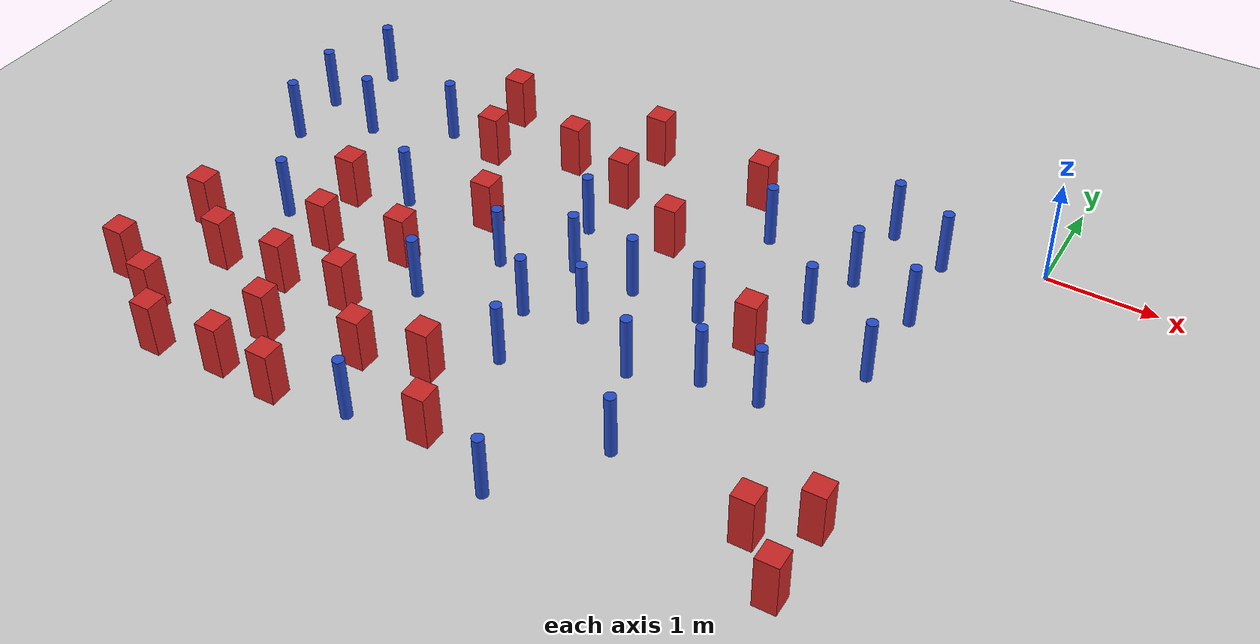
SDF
<sdf version="1.6">
 <world name="default">
  <model name="ground_plane">
   <static>1</static>
   <link name="link">
    <collision name="collision">
     <geometry><plane><normal>0 0 1</normal><size>100 100</size></plane></geometry>
     <surface><friction><ode><mu>100</mu><mu2>50</mu2></ode></friction></surface>
    </collision>
    <visual name="visual">
     <cast_shadows>0</cast_shadows>
     <geometry><plane><normal>0 0 1</normal><size>100 100</size></plane></geometry>
     <material>
      <ambient>1.0 1.0 1.0 1.0</ambient>
      <diffuse>0.8 0.8 0.8 1.0</diffuse>
      <specular>0.01 0.01 0.01 1.000000</specular>
     </material>
    </visual>
   </link>
  </model>
  <model name="square_post_obstacle1">
   <static>true</static>
   <pose>-6.39491690742 -4.133903235 1.91545236811e-07 -7.35059704564e-06 1.12565212e-07 2.39332434364e-05</pose>
   <link name="link">
    <pose>0 0 0.25 0 -0 0</pose>
    <inertial>
     <mass>100</mass>
     <inertia>
      <ixx>0.166667</ixx>
      <ixy>0</ixy>
      <ixz>0</ixz>
      <iyy>0.166667</iyy>
      <iyz>0</iyz>
      <izz>0.166667</izz>
     </inertia>
    </inertial>
    <collision name="collision"><geometry><box><size>.2 .2 .5</size></box></geometry></collision>
    <visual name="visual">
     <geometry><box><size>.2 .2 .5</size></box></geometry>
     <material>
      <script><name>Gazebo/Red</name><uri>file://media/materials/scripts/gazebo.material</uri></script>
     </material>
    </visual>
   </link>
  </model>
  <model name="pole_obstacle0">
   <static>true</static>
   <pose>-4.56092497138 -2.88060455729 7.38925637345e-09 -8.47170692798e-08 1.24976764937e-08 -1.74513093023e-07</pose>
   <link name="link">
    <pose>0 0 0.3 0 -0 0</pose>
    <inertial>
     <mass>1</mass>
     <inertia><ixx>0.145833</ixx><ixy>0</ixy><ixz>0</ixz><iyy>0.145833</iyy><iyz>0</iyz><izz>0.125</izz></inertia>
    </inertial>
    <collision name="collision">
     <geometry><cylinder><radius>0.05</radius><length>.6</length></cylinder></geometry>
    </collision>
    <visual name="visual">
     <geometry><cylinder><radius>0.05</radius><length>.6</length></cylinder></geometry>
     <material>
      <script><name>Gazebo/Blue</name><uri>file://media/materials/scripts/gazebo.material</uri></script>
     </material>
    </visual>
   </link>
  </model>
  <model name="square_post_obstacle5">
   <static>true</static>
   <pose>-3.91053096083 -3.63383336652 1.91545236811e-07 -7.35059704564e-06 1.12565212e-07 2.39332434364e-05</pose>
   <link name="link">
    <pose>0 0 0.25 0 -0 0</pose>
    <inertial>
     <mass>100</mass>
     <inertia>
      <ixx>0.166667</ixx>
      <ixy>0</ixy>
      <ixz>0</ixz>
      <iyy>0.166667</iyy>
      <iyz>0</iyz>
      <izz>0.166667</izz>
     </inertia>
    </inertial>
    <collision name="collision"><geometry><box><size>.2 .2 .5</size></box></geometry></collision>
    <visual name="visual">
     <geometry><box><size>.2 .2 .5</size></box></geometry>
     <material>
      <script><name>Gazebo/Red</name><uri>file://media/materials/scripts/gazebo.material</uri></script>
     </material>
    </visual>
   </link>
  </model>
  <model name="square_post_obstacle6">
   <static>true</static>
   <pose>-3.00124397409 -1.26506533317 1.91545236811e-07 -7.35059704564e-06 1.12565212e-07 2.39332434364e-05</pose>
   <link name="link">
    <pose>0 0 0.25 0 -0 0</pose>
    <inertial>
     <mass>100</mass>
     <inertia>
      <ixx>0.166667</ixx>
      <ixy>0</ixy>
      <ixz>0</ixz>
      <iyy>0.166667</iyy>
      <iyz>0</iyz>
      <izz>0.166667</izz>
     </inertia>
    </inertial>
    <collision name="collision"><geometry><box><size>.2 .2 .5</size></box></geometry></collision>
    <visual name="visual">
     <geometry><box><size>.2 .2 .5</size></box></geometry>
     <material>
      <script><name>Gazebo/Red</name><uri>file://media/materials/scripts/gazebo.material</uri></script>
     </material>
    </visual>
   </link>
  </model>
  <model name="pole_obstacle8">
   <static>true</static>
   <pose>-4.17518788709 -2.18737991646 7.38925637345e-09 -8.47170692798e-08 1.24976764937e-08 -1.74513093023e-07</pose>
   <link name="link">
    <pose>0 0 0.3 0 -0 0</pose>
    <inertial>
     <mass>1</mass>
     <inertia><ixx>0.145833</ixx><ixy>0</ixy><ixz>0</ixz><iyy>0.145833</iyy><iyz>0</iyz><izz>0.125</izz></inertia>
    </inertial>
    <collision name="collision">
     <geometry><cylinder><radius>0.05</radius><length>.6</length></cylinder></geometry>
    </collision>
    <visual name="visual">
     <geometry><cylinder><radius>0.05</radius><length>.6</length></cylinder></geometry>
     <material>
      <script><name>Gazebo/Blue</name><uri>file://media/materials/scripts/gazebo.material</uri></script>
     </material>
    </visual>
   </link>
  </model>
  <model name="pole_obstacle15">
   <static>true</static>
   <pose>-6.21907409106 -2.55616111198 7.38925637345e-09 -8.47170692798e-08 1.24976764937e-08 -1.74513093023e-07</pose>
   <link name="link">
    <pose>0 0 0.3 0 -0 0</pose>
    <inertial>
     <mass>1</mass>
     <inertia><ixx>0.145833</ixx><ixy>0</ixy><ixz>0</ixz><iyy>0.145833</iyy><iyz>0</iyz><izz>0.125</izz></inertia>
    </inertial>
    <collision name="collision">
     <geometry><cylinder><radius>0.05</radius><length>.6</length></cylinder></geometry>
    </collision>
    <visual name="visual">
     <geometry><cylinder><radius>0.05</radius><length>.6</length></cylinder></geometry>
     <material>
      <script><name>Gazebo/Blue</name><uri>file://media/materials/scripts/gazebo.material</uri></script>
     </material>
    </visual>
   </link>
  </model>
  <model name="pole_obstacle23">
   <static>true</static>
   <pose>-6.74121917437 -0.307114602016 7.38925637345e-09 -8.47170692798e-08 1.24976765003e-08 -1.7451309302e-07</pose>
   <link name="link">
    <pose>0 0 0.3 0 -0 0</pose>
    <inertial>
     <mass>1</mass>
     <inertia><ixx>0.145833</ixx><ixy>0</ixy><ixz>0</ixz><iyy>0.145833</iyy><iyz>0</iyz><izz>0.125</izz></inertia>
    </inertial>
    <collision name="collision">
     <geometry><cylinder><radius>0.05</radius><length>.6</length></cylinder></geometry>
    </collision>
    <visual name="visual">
     <geometry><cylinder><radius>0.05</radius><length>.6</length></cylinder></geometry>
     <material>
      <script><name>Gazebo/Blue</name><uri>file://media/materials/scripts/gazebo.material</uri></script>
     </material>
    </visual>
   </link>
  </model>
  <model name="pole_obstacle26">
   <static>true</static>
   <pose>-6.3582931307 -1.13641915893 7.38925637345e-09 -8.471706928e-08 1.24976765134e-08 -1.74513093015e-07</pose>
   <link name="link">
    <pose>0 0 0.3 0 -0 0</pose>
    <inertial>
     <mass>1</mass>
     <inertia><ixx>0.145833</ixx><ixy>0</ixy><ixz>0</ixz><iyy>0.145833</iyy><iyz>0</iyz><izz>0.125</izz></inertia>
    </inertial>
    <collision name="collision">
     <geometry><cylinder><radius>0.05</radius><length>.6</length></cylinder></geometry>
    </collision>
    <visual name="visual">
     <geometry><cylinder><radius>0.05</radius><length>.6</length></cylinder></geometry>
     <material>
      <script><name>Gazebo/Blue</name><uri>file://media/materials/scripts/gazebo.material</uri></script>
     </material>
    </visual>
   </link>
  </model>
  <model name="pole_obstacle27">
   <static>true</static>
   <pose>-1.35448538299 -0.120145712874 7.38925637345e-09 -8.471706928e-08 1.24976765072e-08 -1.74513093017e-07</pose>
   <link name="link">
    <pose>0 0 0.3 0 -0 0</pose>
    <inertial>
     <mass>1</mass>
     <inertia><ixx>0.145833</ixx><ixy>0</ixy><ixz>0</ixz><iyy>0.145833</iyy><iyz>0</iyz><izz>0.125</izz></inertia>
    </inertial>
    <collision name="collision">
     <geometry><cylinder><radius>0.05</radius><length>.6</length></cylinder></geometry>
    </collision>
    <visual name="visual">
     <geometry><cylinder><radius>0.05</radius><length>.6</length></cylinder></geometry>
     <material>
      <script><name>Gazebo/Blue</name><uri>file://media/materials/scripts/gazebo.material</uri></script>
     </material>
    </visual>
   </link>
  </model>
  <model name="pole_obstacle35">
   <static>true</static>
   <pose>-3.74560954083 -1.41328076876 7.38925637345e-09 -8.47170692796e-08 1.24976764713e-08 -1.74513093037e-07</pose>
   <link name="link">
    <pose>0 0 0.3 0 -0 0</pose>
    <inertial>
     <mass>1</mass>
     <inertia><ixx>0.145833</ixx><ixy>0</ixy><ixz>0</ixz><iyy>0.145833</iyy><iyz>0</iyz><izz>0.125</izz></inertia>
    </inertial>
    <collision name="collision">
     <geometry><cylinder><radius>0.05</radius><length>.6</length></cylinder></geometry>
    </collision>
    <visual name="visual">
     <geometry><cylinder><radius>0.05</radius><length>.6</length></cylinder></geometry>
     <material>
      <script><name>Gazebo/Blue</name><uri>file://media/materials/scripts/gazebo.material</uri></script>
     </material>
    </visual>
   </link>
  </model>
  <model name="pole_obstacle37">
   <static>true</static>
   <pose>-0.826497868445 -0.321082430772 7.38925637345e-09 -8.471706928e-08 1.24976765108e-08 -1.74513093015e-07</pose>
   <link name="link">
    <pose>0 0 0.3 0 -0 0</pose>
    <inertial>
     <mass>1</mass>
     <inertia><ixx>0.145833</ixx><ixy>0</ixy><ixz>0</ixz><iyy>0.145833</iyy><iyz>0</iyz><izz>0.125</izz></inertia>
    </inertial>
    <collision name="collision">
     <geometry><cylinder><radius>0.05</radius><length>.6</length></cylinder></geometry>
    </collision>
    <visual name="visual">
     <geometry><cylinder><radius>0.05</radius><length>.6</length></cylinder></geometry>
     <material>
      <script><name>Gazebo/Blue</name><uri>file://media/materials/scripts/gazebo.material</uri></script>
     </material>
    </visual>
   </link>
  </model>
  <model name="square_post_obstacle39">
   <static>true</static>
   <pose>-5.3908902493 -4.42289762209 1.91545236811e-07 -7.35059704564e-06 1.12565212e-07 2.39332434364e-05</pose>
   <link name="link">
    <pose>0 0 0.25 0 -0 0</pose>
    <inertial>
     <mass>100</mass>
     <inertia>
      <ixx>0.166667</ixx>
      <ixy>0</ixy>
      <ixz>0</ixz>
      <iyy>0.166667</iyy>
      <iyz>0</iyz>
      <izz>0.166667</izz>
     </inertia>
    </inertial>
    <collision name="collision"><geometry><box><size>.2 .2 .5</size></box></geometry></collision>
    <visual name="visual">
     <geometry><box><size>.2 .2 .5</size></box></geometry>
     <material>
      <script><name>Gazebo/Red</name><uri>file://media/materials/scripts/gazebo.material</uri></script>
     </material>
    </visual>
   </link>
  </model>
  <model name="pole_obstacle45">
   <static>true</static>
   <pose>-2.28425135521 -0.732208568051 7.38925637345e-09 -8.471706928e-08 1.24976765177e-08 -1.74513093012e-07</pose>
   <link name="link">
    <pose>0 0 0.3 0 -0 0</pose>
    <inertial>
     <mass>1</mass>
     <inertia><ixx>0.145833</ixx><ixy>0</ixy><ixz>0</ixz><iyy>0.145833</iyy><iyz>0</iyz><izz>0.125</izz></inertia>
    </inertial>
    <collision name="collision">
     <geometry><cylinder><radius>0.05</radius><length>.6</length></cylinder></geometry>
    </collision>
    <visual name="visual">
     <geometry><cylinder><radius>0.05</radius><length>.6</length></cylinder></geometry>
     <material>
      <script><name>Gazebo/Blue</name><uri>file://media/materials/scripts/gazebo.material</uri></script>
     </material>
    </visual>
   </link>
  </model>
  <model name="square_post_obstacle46">
   <static>true</static>
   <pose>-1.8198222395 -2.03254273891 1.91545236811e-07 -7.35059704564e-06 1.12565212e-07 2.39332434364e-05</pose>
   <link name="link">
    <pose>0 0 0.25 0 -0 0</pose>
    <inertial>
     <mass>100</mass>
     <inertia>
      <ixx>0.166667</ixx>
      <ixy>0</ixy>
      <ixz>0</ixz>
      <iyy>0.166667</iyy>
      <iyz>0</iyz>
      <izz>0.166667</izz>
     </inertia>
    </inertial>
    <collision name="collision"><geometry><box><size>.2 .2 .5</size></box></geometry></collision>
    <visual name="visual">
     <geometry><box><size>.2 .2 .5</size></box></geometry>
     <material>
      <script><name>Gazebo/Red</name><uri>file://media/materials/scripts/gazebo.material</uri></script>
     </material>
    </visual>
   </link>
  </model>
  <model name="square_post_obstacle52">
   <static>true</static>
   <pose>-6.02390070601 -4.48360898478 1.91545236811e-07 -7.35059704564e-06 1.12565212e-07 2.39332434364e-05</pose>
   <link name="link">
    <pose>0 0 0.25 0 -0 0</pose>
    <inertial>
     <mass>100</mass>
     <inertia>
      <ixx>0.166667</ixx>
      <ixy>0</ixy>
      <ixz>0</ixz>
      <iyy>0.166667</iyy>
      <iyz>0</iyz>
      <izz>0.166667</izz>
     </inertia>
    </inertial>
    <collision name="collision"><geometry><box><size>.2 .2 .5</size></box></geometry></collision>
    <visual name="visual">
     <geometry><box><size>.2 .2 .5</size></box></geometry>
     <material>
      <script><name>Gazebo/Red</name><uri>file://media/materials/scripts/gazebo.material</uri></script>
     </material>
    </visual>
   </link>
  </model>
  <model name="pole_obstacle51">
   <static>true</static>
   <pose>-1.40162476744 -0.888901979604 7.38925637345e-09 -8.47170692799e-08 1.24976765075e-08 -1.74513093017e-07</pose>
   <link name="link">
    <pose>0 0 0.3 0 -0 0</pose>
    <inertial>
     <mass>1</mass>
     <inertia><ixx>0.145833</ixx><ixy>0</ixy><ixz>0</ixz><iyy>0.145833</iyy><iyz>0</iyz><izz>0.125</izz></inertia>
    </inertial>
    <collision name="collision">
     <geometry><cylinder><radius>0.05</radius><length>.6</length></cylinder></geometry>
    </collision>
    <visual name="visual">
     <geometry><cylinder><radius>0.05</radius><length>.6</length></cylinder></geometry>
     <material>
      <script><name>Gazebo/Blue</name><uri>file://media/materials/scripts/gazebo.material</uri></script>
     </material>
    </visual>
   </link>
  </model>
  <model name="pole_obstacle52">
   <static>true</static>
   <pose>-5.63539537617 -0.811100000866 7.38925637345e-09 -8.47170692799e-08 1.24976765038e-08 -1.74513093018e-07</pose>
   <link name="link">
    <pose>0 0 0.3 0 -0 0</pose>
    <inertial>
     <mass>1</mass>
     <inertia><ixx>0.145833</ixx><ixy>0</ixy><ixz>0</ixz><iyy>0.145833</iyy><iyz>0</iyz><izz>0.125</izz></inertia>
    </inertial>
    <collision name="collision">
     <geometry><cylinder><radius>0.05</radius><length>.6</length></cylinder></geometry>
    </collision>
    <visual name="visual">
     <geometry><cylinder><radius>0.05</radius><length>.6</length></cylinder></geometry>
     <material>
      <script><name>Gazebo/Blue</name><uri>file://media/materials/scripts/gazebo.material</uri></script>
     </material>
    </visual>
   </link>
  </model>
  <model name="square_post_obstacle59">
   <static>true</static>
   <pose>-4.47175387688 -3.79075135599 1.91545236811e-07 -7.35059704564e-06 1.12565212e-07 2.39332434364e-05</pose>
   <link name="link">
    <pose>0 0 0.25 0 -0 0</pose>
    <inertial>
     <mass>100</mass>
     <inertia>
      <ixx>0.166667</ixx>
      <ixy>0</ixy>
      <ixz>0</ixz>
      <iyy>0.166667</iyy>
      <iyz>0</iyz>
      <izz>0.166667</izz>
     </inertia>
    </inertial>
    <collision name="collision"><geometry><box><size>.2 .2 .5</size></box></geometry></collision>
    <visual name="visual">
     <geometry><box><size>.2 .2 .5</size></box></geometry>
     <material>
      <script><name>Gazebo/Red</name><uri>file://media/materials/scripts/gazebo.material</uri></script>
     </material>
    </visual>
   </link>
  </model>
  <model name="square_post_obstacle62">
   <static>true</static>
   <pose>-2.60596281083 -0.266242657107 1.91545236811e-07 -7.35059704564e-06 1.12565212e-07 2.39332434364e-05</pose>
   <link name="link">
    <pose>0 0 0.25 0 -0 0</pose>
    <inertial>
     <mass>100</mass>
     <inertia>
      <ixx>0.166667</ixx>
      <ixy>0</ixy>
      <ixz>0</ixz>
      <iyy>0.166667</iyy>
      <iyz>0</iyz>
      <izz>0.166667</izz>
     </inertia>
    </inertial>
    <collision name="collision"><geometry><box><size>.2 .2 .5</size></box></geometry></collision>
    <visual name="visual">
     <geometry><box><size>.2 .2 .5</size></box></geometry>
     <material>
      <script><name>Gazebo/Red</name><uri>file://media/materials/scripts/gazebo.material</uri></script>
     </material>
    </visual>
   </link>
  </model>
  <model name="pole_obstacle73">
   <static>true</static>
   <pose>-0.822326774501 -1.91397265986 7.38925637345e-09 -8.47170692799e-08 1.24976765033e-08 -1.7451309302e-07</pose>
   <link name="link">
    <pose>0 0 0.3 0 -0 0</pose>
    <inertial>
     <mass>1</mass>
     <inertia><ixx>0.145833</ixx><ixy>0</ixy><ixz>0</ixz><iyy>0.145833</iyy><iyz>0</iyz><izz>0.125</izz></inertia>
    </inertial>
    <collision name="collision">
     <geometry><cylinder><radius>0.05</radius><length>.6</length></cylinder></geometry>
    </collision>
    <visual name="visual">
     <geometry><cylinder><radius>0.05</radius><length>.6</length></cylinder></geometry>
     <material>
      <script><name>Gazebo/Blue</name><uri>file://media/materials/scripts/gazebo.material</uri></script>
     </material>
    </visual>
   </link>
  </model>
  <model name="pole_obstacle74">
   <static>true</static>
   <pose>-1.43598949563 -2.61268876939 7.38925637345e-09 -8.47170692799e-08 1.24976765053e-08 -1.74513093017e-07</pose>
   <link name="link">
    <pose>0 0 0.3 0 -0 0</pose>
    <inertial>
     <mass>1</mass>
     <inertia><ixx>0.145833</ixx><ixy>0</ixy><ixz>0</ixz><iyy>0.145833</iyy><iyz>0</iyz><izz>0.125</izz></inertia>
    </inertial>
    <collision name="collision">
     <geometry><cylinder><radius>0.05</radius><length>.6</length></cylinder></geometry>
    </collision>
    <visual name="visual">
     <geometry><cylinder><radius>0.05</radius><length>.6</length></cylinder></geometry>
     <material>
      <script><name>Gazebo/Blue</name><uri>file://media/materials/scripts/gazebo.material</uri></script>
     </material>
    </visual>
   </link>
  </model>
  <model name="pole_obstacle80">
   <static>true</static>
   <pose>-6.91685607678 -1.54299257739 7.38925637345e-09 -8.471706928e-08 1.24976765134e-08 -1.74513093015e-07</pose>
   <link name="link">
    <pose>0 0 0.3 0 -0 0</pose>
    <inertial>
     <mass>1</mass>
     <inertia><ixx>0.145833</ixx><ixy>0</ixy><ixz>0</ixz><iyy>0.145833</iyy><iyz>0</iyz><izz>0.125</izz></inertia>
    </inertial>
    <collision name="collision">
     <geometry><cylinder><radius>0.05</radius><length>.6</length></cylinder></geometry>
    </collision>
    <visual name="visual">
     <geometry><cylinder><radius>0.05</radius><length>.6</length></cylinder></geometry>
     <material>
      <script><name>Gazebo/Blue</name><uri>file://media/materials/scripts/gazebo.material</uri></script>
     </material>
    </visual>
   </link>
  </model>
  <model name="pole_obstacle89">
   <static>true</static>
   <pose>-3.16234623937 -2.4626523414 7.38925637345e-09 -8.471706928e-08 1.24976765098e-08 -1.74513093016e-07</pose>
   <link name="link">
    <pose>0 0 0.3 0 -0 0</pose>
    <inertial>
     <mass>1</mass>
     <inertia><ixx>0.145833</ixx><ixy>0</ixy><ixz>0</ixz><iyy>0.145833</iyy><iyz>0</iyz><izz>0.125</izz></inertia>
    </inertial>
    <collision name="collision">
     <geometry><cylinder><radius>0.05</radius><length>.6</length></cylinder></geometry>
    </collision>
    <visual name="visual">
     <geometry><cylinder><radius>0.05</radius><length>.6</length></cylinder></geometry>
     <material>
      <script><name>Gazebo/Blue</name><uri>file://media/materials/scripts/gazebo.material</uri></script>
     </material>
    </visual>
   </link>
  </model>
  <model name="pole_obstacle92">
   <static>true</static>
   <pose>-6.95870342498 -0.946114692141 7.38925637345e-09 -8.47170692799e-08 1.24976765038e-08 -1.74513093018e-07</pose>
   <link name="link">
    <pose>0 0 0.3 0 -0 0</pose>
    <inertial>
     <mass>1</mass>
     <inertia><ixx>0.145833</ixx><ixy>0</ixy><ixz>0</ixz><iyy>0.145833</iyy><iyz>0</iyz><izz>0.125</izz></inertia>
    </inertial>
    <collision name="collision">
     <geometry><cylinder><radius>0.05</radius><length>.6</length></cylinder></geometry>
    </collision>
    <visual name="visual">
     <geometry><cylinder><radius>0.05</radius><length>.6</length></cylinder></geometry>
     <material>
      <script><name>Gazebo/Blue</name><uri>file://media/materials/scripts/gazebo.material</uri></script>
     </material>
    </visual>
   </link>
  </model>
  <model name="pole_obstacle94">
   <static>true</static>
   <pose>-2.17183314706 -3.65559998205 7.38925637345e-09 -8.47170692798e-08 1.24976764939e-08 -1.74513093025e-07</pose>
   <link name="link">
    <pose>0 0 0.3 0 -0 0</pose>
    <inertial>
     <mass>1</mass>
     <inertia><ixx>0.145833</ixx><ixy>0</ixy><ixz>0</ixz><iyy>0.145833</iyy><iyz>0</iyz><izz>0.125</izz></inertia>
    </inertial>
    <collision name="collision">
     <geometry><cylinder><radius>0.05</radius><length>.6</length></cylinder></geometry>
    </collision>
    <visual name="visual">
     <geometry><cylinder><radius>0.05</radius><length>.6</length></cylinder></geometry>
     <material>
      <script><name>Gazebo/Blue</name><uri>file://media/materials/scripts/gazebo.material</uri></script>
     </material>
    </visual>
   </link>
  </model>
  <model name="square_post_obstacle104">
   <static>true</static>
   <pose>-4.57747132569 -1.77121853592 1.91545236811e-07 -7.35059704564e-06 1.12565212e-07 2.39332434364e-05</pose>
   <link name="link">
    <pose>0 0 0.25 0 -0 0</pose>
    <inertial>
     <mass>100</mass>
     <inertia>
      <ixx>0.166667</ixx>
      <ixy>0</ixy>
      <ixz>0</ixz>
      <iyy>0.166667</iyy>
      <iyz>0</iyz>
      <izz>0.166667</izz>
     </inertia>
    </inertial>
    <collision name="collision"><geometry><box><size>.2 .2 .5</size></box></geometry></collision>
    <visual name="visual">
     <geometry><box><size>.2 .2 .5</size></box></geometry>
     <material>
      <script><name>Gazebo/Red</name><uri>file://media/materials/scripts/gazebo.material</uri></script>
     </material>
    </visual>
   </link>
  </model>
  <model name="square_post_obstacle105">
   <static>true</static>
   <pose>-0.470929109237 -4.32719044432 1.91545236811e-07 -7.35059704564e-06 1.12565212e-07 2.39332434364e-05</pose>
   <link name="link">
    <pose>0 0 0.25 0 -0 0</pose>
    <inertial>
     <mass>100</mass>
     <inertia>
      <ixx>0.166667</ixx>
      <ixy>0</ixy>
      <ixz>0</ixz>
      <iyy>0.166667</iyy>
      <iyz>0</iyz>
      <izz>0.166667</izz>
     </inertia>
    </inertial>
    <collision name="collision"><geometry><box><size>.2 .2 .5</size></box></geometry></collision>
    <visual name="visual">
     <geometry><box><size>.2 .2 .5</size></box></geometry>
     <material>
      <script><name>Gazebo/Red</name><uri>file://media/materials/scripts/gazebo.material</uri></script>
     </material>
    </visual>
   </link>
  </model>
  <model name="square_post_obstacle106">
   <static>true</static>
   <pose>-5.65466365481 -2.72072402564 1.91545236811e-07 -7.35059704564e-06 1.12565212e-07 2.39332434364e-05</pose>
   <link name="link">
    <pose>0 0 0.25 0 -0 0</pose>
    <inertial>
     <mass>100</mass>
     <inertia>
      <ixx>0.166667</ixx>
      <ixy>0</ixy>
      <ixz>0</ixz>
      <iyy>0.166667</iyy>
      <iyz>0</iyz>
      <izz>0.166667</izz>
     </inertia>
    </inertial>
    <collision name="collision"><geometry><box><size>.2 .2 .5</size></box></geometry></collision>
    <visual name="visual">
     <geometry><box><size>.2 .2 .5</size></box></geometry>
     <material>
      <script><name>Gazebo/Red</name><uri>file://media/materials/scripts/gazebo.material</uri></script>
     </material>
    </visual>
   </link>
  </model>
  <model name="pole_obstacle119">
   <static>true</static>
   <pose>-2.7796190846 -4.50880721102 7.38925637345e-09 -8.47170692798e-08 1.24976765033e-08 -1.74513093019e-07</pose>
   <link name="link">
    <pose>0 0 0.3 0 -0 0</pose>
    <inertial>
     <mass>1</mass>
     <inertia><ixx>0.145833</ixx><ixy>0</ixy><ixz>0</ixz><iyy>0.145833</iyy><iyz>0</iyz><izz>0.125</izz></inertia>
    </inertial>
    <collision name="collision">
     <geometry><cylinder><radius>0.05</radius><length>.6</length></cylinder></geometry>
    </collision>
    <visual name="visual">
     <geometry><cylinder><radius>0.05</radius><length>.6</length></cylinder></geometry>
     <material>
      <script><name>Gazebo/Blue</name><uri>file://media/materials/scripts/gazebo.material</uri></script>
     </material>
    </visual>
   </link>
  </model>
  <model name="square_post_obstacle110">
   <static>true</static>
   <pose>-4.34959309284 -0.656188685246 1.91545236811e-07 -7.35059704564e-06 1.12565212e-07 2.39332434364e-05</pose>
   <link name="link">
    <pose>0 0 0.25 0 -0 0</pose>
    <inertial>
     <mass>100</mass>
     <inertia>
      <ixx>0.166667</ixx>
      <ixy>0</ixy>
      <ixz>0</ixz>
      <iyy>0.166667</iyy>
      <iyz>0</iyz>
      <izz>0.166667</izz>
     </inertia>
    </inertial>
    <collision name="collision"><geometry><box><size>.2 .2 .5</size></box></geometry></collision>
    <visual name="visual">
     <geometry><box><size>.2 .2 .5</size></box></geometry>
     <material>
      <script><name>Gazebo/Red</name><uri>file://media/materials/scripts/gazebo.material</uri></script>
     </material>
    </visual>
   </link>
  </model>
  <model name="pole_obstacle123">
   <static>true</static>
   <pose>-1.53346020084 -1.51380927813 7.38925637345e-09 -8.471706928e-08 1.24976765079e-08 -1.74513093017e-07</pose>
   <link name="link">
    <pose>0 0 0.3 0 -0 0</pose>
    <inertial>
     <mass>1</mass>
     <inertia><ixx>0.145833</ixx><ixy>0</ixy><ixz>0</ixz><iyy>0.145833</iyy><iyz>0</iyz><izz>0.125</izz></inertia>
    </inertial>
    <collision name="collision">
     <geometry><cylinder><radius>0.05</radius><length>.6</length></cylinder></geometry>
    </collision>
    <visual name="visual">
     <geometry><cylinder><radius>0.05</radius><length>.6</length></cylinder></geometry>
     <material>
      <script><name>Gazebo/Blue</name><uri>file://media/materials/scripts/gazebo.material</uri></script>
     </material>
    </visual>
   </link>
  </model>
  <model name="pole_obstacle124">
   <static>true</static>
   <pose>-2.98005247995 -1.94654053411 7.38925637345e-09 -8.471706928e-08 1.24976765152e-08 -1.74513093012e-07</pose>
   <link name="link">
    <pose>0 0 0.3 0 -0 0</pose>
    <inertial>
     <mass>1</mass>
     <inertia><ixx>0.145833</ixx><ixy>0</ixy><ixz>0</ixz><iyy>0.145833</iyy><iyz>0</iyz><izz>0.125</izz></inertia>
    </inertial>
    <collision name="collision">
     <geometry><cylinder><radius>0.05</radius><length>.6</length></cylinder></geometry>
    </collision>
    <visual name="visual">
     <geometry><cylinder><radius>0.05</radius><length>.6</length></cylinder></geometry>
     <material>
      <script><name>Gazebo/Blue</name><uri>file://media/materials/scripts/gazebo.material</uri></script>
     </material>
    </visual>
   </link>
  </model>
  <model name="pole_obstacle130">
   <static>true</static>
   <pose>-3.48637108158 -3.2264196629 7.38925637345e-09 -8.471706928e-08 1.24976765098e-08 -1.74513093016e-07</pose>
   <link name="link">
    <pose>0 0 0.3 0 -0 0</pose>
    <inertial>
     <mass>1</mass>
     <inertia><ixx>0.145833</ixx><ixy>0</ixy><ixz>0</ixz><iyy>0.145833</iyy><iyz>0</iyz><izz>0.125</izz></inertia>
    </inertial>
    <collision name="collision">
     <geometry><cylinder><radius>0.05</radius><length>.6</length></cylinder></geometry>
    </collision>
    <visual name="visual">
     <geometry><cylinder><radius>0.05</radius><length>.6</length></cylinder></geometry>
     <material>
      <script><name>Gazebo/Blue</name><uri>file://media/materials/scripts/gazebo.material</uri></script>
     </material>
    </visual>
   </link>
  </model>
  <model name="pole_obstacle133">
   <static>true</static>
   <pose>-2.510854599 -2.84514064695 7.38925637345e-09 -8.47170692798e-08 1.24976764939e-08 -1.74513093025e-07</pose>
   <link name="link">
    <pose>0 0 0.3 0 -0 0</pose>
    <inertial>
     <mass>1</mass>
     <inertia><ixx>0.145833</ixx><ixy>0</ixy><ixz>0</ixz><iyy>0.145833</iyy><iyz>0</iyz><izz>0.125</izz></inertia>
    </inertial>
    <collision name="collision">
     <geometry><cylinder><radius>0.05</radius><length>.6</length></cylinder></geometry>
    </collision>
    <visual name="visual">
     <geometry><cylinder><radius>0.05</radius><length>.6</length></cylinder></geometry>
     <material>
      <script><name>Gazebo/Blue</name><uri>file://media/materials/scripts/gazebo.material</uri></script>
     </material>
    </visual>
   </link>
  </model>
  <model name="square_post_obstacle117">
   <static>true</static>
   <pose>-3.7384359428 -0.125362351315 1.91545236811e-07 -7.35059704564e-06 1.12565212e-07 2.39332434364e-05</pose>
   <link name="link">
    <pose>0 0 0.25 0 -0 0</pose>
    <inertial>
     <mass>100</mass>
     <inertia>
      <ixx>0.166667</ixx>
      <ixy>0</ixy>
      <ixz>0</ixz>
      <iyy>0.166667</iyy>
      <iyz>0</iyz>
      <izz>0.166667</izz>
     </inertia>
    </inertial>
    <collision name="collision"><geometry><box><size>.2 .2 .5</size></box></geometry></collision>
    <visual name="visual">
     <geometry><box><size>.2 .2 .5</size></box></geometry>
     <material>
      <script><name>Gazebo/Red</name><uri>file://media/materials/scripts/gazebo.material</uri></script>
     </material>
    </visual>
   </link>
  </model>
  <model name="square_post_obstacle124">
   <static>true</static>
   <pose>-5.22226776451 -0.254176593436 1.91545236811e-07 -7.35059704564e-06 1.12565212e-07 2.39332434364e-05</pose>
   <link name="link">
    <pose>0 0 0.25 0 -0 0</pose>
    <inertial>
     <mass>100</mass>
     <inertia>
      <ixx>0.166667</ixx>
      <ixy>0</ixy>
      <ixz>0</ixz>
      <iyy>0.166667</iyy>
      <iyz>0</iyz>
      <izz>0.166667</izz>
     </inertia>
    </inertial>
    <collision name="collision"><geometry><box><size>.2 .2 .5</size></box></geometry></collision>
    <visual name="visual">
     <geometry><box><size>.2 .2 .5</size></box></geometry>
     <material>
      <script><name>Gazebo/Red</name><uri>file://media/materials/scripts/gazebo.material</uri></script>
     </material>
    </visual>
   </link>
  </model>
  <model name="pole_obstacle141">
   <static>true</static>
   <pose>-2.33152136641 -1.97423939426 7.38925637345e-09 -8.471706928e-08 1.249767651e-08 -1.74513093015e-07</pose>
   <link name="link">
    <pose>0 0 0.3 0 -0 0</pose>
    <inertial>
     <mass>1</mass>
     <inertia><ixx>0.145833</ixx><ixy>0</ixy><ixz>0</ixz><iyy>0.145833</iyy><iyz>0</iyz><izz>0.125</izz></inertia>
    </inertial>
    <collision name="collision">
     <geometry><cylinder><radius>0.05</radius><length>.6</length></cylinder></geometry>
    </collision>
    <visual name="visual">
     <geometry><cylinder><radius>0.05</radius><length>.6</length></cylinder></geometry>
     <material>
      <script><name>Gazebo/Blue</name><uri>file://media/materials/scripts/gazebo.material</uri></script>
     </material>
    </visual>
   </link>
  </model>
  <model name="square_post_obstacle138">
   <static>true</static>
   <pose>-0.467235404323 -3.59523827145 1.91545236811e-07 -7.35059704564e-06 1.12565212e-07 2.39332434364e-05</pose>
   <link name="link">
    <pose>0 0 0.25 0 -0 0</pose>
    <inertial>
     <mass>100</mass>
     <inertia>
      <ixx>0.166667</ixx>
      <ixy>0</ixy>
      <ixz>0</ixz>
      <iyy>0.166667</iyy>
      <iyz>0</iyz>
      <izz>0.166667</izz>
     </inertia>
    </inertial>
    <collision name="collision"><geometry><box><size>.2 .2 .5</size></box></geometry></collision>
    <visual name="visual">
     <geometry><box><size>.2 .2 .5</size></box></geometry>
     <material>
      <script><name>Gazebo/Red</name><uri>file://media/materials/scripts/gazebo.material</uri></script>
     </material>
    </visual>
   </link>
  </model>
  <model name="pole_obstacle150">
   <static>true</static>
   <pose>-5.37277035715 -1.8874569715 7.38925637345e-09 -8.471706928e-08 1.24976765134e-08 -1.74513093015e-07</pose>
   <link name="link">
    <pose>0 0 0.3 0 -0 0</pose>
    <inertial>
     <mass>1</mass>
     <inertia><ixx>0.145833</ixx><ixy>0</ixy><ixz>0</ixz><iyy>0.145833</iyy><iyz>0</iyz><izz>0.125</izz></inertia>
    </inertial>
    <collision name="collision">
     <geometry><cylinder><radius>0.05</radius><length>.6</length></cylinder></geometry>
    </collision>
    <visual name="visual">
     <geometry><cylinder><radius>0.05</radius><length>.6</length></cylinder></geometry>
     <material>
      <script><name>Gazebo/Blue</name><uri>file://media/materials/scripts/gazebo.material</uri></script>
     </material>
    </visual>
   </link>
  </model>
  <model name="square_post_obstacle143">
   <static>true</static>
   <pose>-6.90554614111 -3.8758690728 1.91545236811e-07 -7.35059704564e-06 1.12565212e-07 2.39332434364e-05</pose>
   <link name="link">
    <pose>0 0 0.25 0 -0 0</pose>
    <inertial>
     <mass>100</mass>
     <inertia>
      <ixx>0.166667</ixx>
      <ixy>0</ixy>
      <ixz>0</ixz>
      <iyy>0.166667</iyy>
      <iyz>0</iyz>
      <izz>0.166667</izz>
     </inertia>
    </inertial>
    <collision name="collision"><geometry><box><size>.2 .2 .5</size></box></geometry></collision>
    <visual name="visual">
     <geometry><box><size>.2 .2 .5</size></box></geometry>
     <material>
      <script><name>Gazebo/Red</name><uri>file://media/materials/scripts/gazebo.material</uri></script>
     </material>
    </visual>
   </link>
  </model>
  <model name="square_post_obstacle145">
   <static>true</static>
   <pose>-5.09149867811 -0.9008014239 1.91545236811e-07 -7.35059704564e-06 1.12565212e-07 2.39332434364e-05</pose>
   <link name="link">
    <pose>0 0 0.25 0 -0 0</pose>
    <inertial>
     <mass>100</mass>
     <inertia>
      <ixx>0.166667</ixx>
      <ixy>0</ixy>
      <ixz>0</ixz>
      <iyy>0.166667</iyy>
      <iyz>0</iyz>
      <izz>0.166667</izz>
     </inertia>
    </inertial>
    <collision name="collision"><geometry><box><size>.2 .2 .5</size></box></geometry></collision>
    <visual name="visual">
     <geometry><box><size>.2 .2 .5</size></box></geometry>
     <material>
      <script><name>Gazebo/Red</name><uri>file://media/materials/scripts/gazebo.material</uri></script>
     </material>
    </visual>
   </link>
  </model>
  <model name="pole_obstacle163">
   <static>true</static>
   <pose>-3.56849208067 -1.93190123621 7.38925637345e-09 -8.47170692796e-08 1.24976764713e-08 -1.74513093037e-07</pose>
   <link name="link">
    <pose>0 0 0.3 0 -0 0</pose>
    <inertial>
     <mass>1</mass>
     <inertia><ixx>0.145833</ixx><ixy>0</ixy><ixz>0</ixz><iyy>0.145833</iyy><iyz>0</iyz><izz>0.125</izz></inertia>
    </inertial>
    <collision name="collision">
     <geometry><cylinder><radius>0.05</radius><length>.6</length></cylinder></geometry>
    </collision>
    <visual name="visual">
     <geometry><cylinder><radius>0.05</radius><length>.6</length></cylinder></geometry>
     <material>
      <script><name>Gazebo/Blue</name><uri>file://media/materials/scripts/gazebo.material</uri></script>
     </material>
    </visual>
   </link>
  </model>
  <model name="pole_obstacle168">
   <static>true</static>
   <pose>-4.1708216486 -4.35697251549 7.38925637345e-09 -8.47170692796e-08 1.24976764786e-08 -1.74513093032e-07</pose>
   <link name="link">
    <pose>0 0 0.3 0 -0 0</pose>
    <inertial>
     <mass>1</mass>
     <inertia><ixx>0.145833</ixx><ixy>0</ixy><ixz>0</ixz><iyy>0.145833</iyy><iyz>0</iyz><izz>0.125</izz></inertia>
    </inertial>
    <collision name="collision">
     <geometry><cylinder><radius>0.05</radius><length>.6</length></cylinder></geometry>
    </collision>
    <visual name="visual">
     <geometry><cylinder><radius>0.05</radius><length>.6</length></cylinder></geometry>
     <material>
      <script><name>Gazebo/Blue</name><uri>file://media/materials/scripts/gazebo.material</uri></script>
     </material>
    </visual>
   </link>
  </model>
  <model name="pole_obstacle173">
   <static>true</static>
   <pose>-1.94587487822 -2.63832442369 7.38925637345e-09 -8.47170692799e-08 1.24976765053e-08 -1.74513093017e-07</pose>
   <link name="link">
    <pose>0 0 0.3 0 -0 0</pose>
    <inertial>
     <mass>1</mass>
     <inertia><ixx>0.145833</ixx><ixy>0</ixy><ixz>0</ixz><iyy>0.145833</iyy><iyz>0</iyz><izz>0.125</izz></inertia>
    </inertial>
    <collision name="collision">
     <geometry><cylinder><radius>0.05</radius><length>.6</length></cylinder></geometry>
    </collision>
    <visual name="visual">
     <geometry><cylinder><radius>0.05</radius><length>.6</length></cylinder></geometry>
     <material>
      <script><name>Gazebo/Blue</name><uri>file://media/materials/scripts/gazebo.material</uri></script>
     </material>
    </visual>
   </link>
  </model>
  <model name="pole_obstacle175">
   <static>true</static>
   <pose>-3.64600607314 -2.63114535974 7.38925637345e-09 -8.47170692798e-08 1.24976764939e-08 -1.74513093025e-07</pose>
   <link name="link">
    <pose>0 0 0.3 0 -0 0</pose>
    <inertial>
     <mass>1</mass>
     <inertia><ixx>0.145833</ixx><ixy>0</ixy><ixz>0</ixz><iyy>0.145833</iyy><iyz>0</iyz><izz>0.125</izz></inertia>
    </inertial>
    <collision name="collision">
     <geometry><cylinder><radius>0.05</radius><length>.6</length></cylinder></geometry>
    </collision>
    <visual name="visual">
     <geometry><cylinder><radius>0.05</radius><length>.6</length></cylinder></geometry>
     <material>
      <script><name>Gazebo/Blue</name><uri>file://media/materials/scripts/gazebo.material</uri></script>
     </material>
    </visual>
   </link>
  </model>
  <model name="square_post_obstacle167">
   <static>true</static>
   <pose>-0.881917182786 -3.89996544094 1.91545236811e-07 -7.35059704564e-06 1.12565212e-07 2.39332434364e-05</pose>
   <link name="link">
    <pose>0 0 0.25 0 -0 0</pose>
    <inertial>
     <mass>100</mass>
     <inertia>
      <ixx>0.166667</ixx>
      <ixy>0</ixy>
      <ixz>0</ixz>
      <iyy>0.166667</iyy>
      <iyz>0</iyz>
      <izz>0.166667</izz>
     </inertia>
    </inertial>
    <collision name="collision"><geometry><box><size>.2 .2 .5</size></box></geometry></collision>
    <visual name="visual">
     <geometry><box><size>.2 .2 .5</size></box></geometry>
     <material>
      <script><name>Gazebo/Red</name><uri>file://media/materials/scripts/gazebo.material</uri></script>
     </material>
    </visual>
   </link>
  </model>
  <model name="square_post_obstacle173">
   <static>true</static>
   <pose>-3.50687052302 -4.23405275845 1.91545236811e-07 -7.35059704564e-06 1.12565212e-07 2.39332434364e-05</pose>
   <link name="link">
    <pose>0 0 0.25 0 -0 0</pose>
    <inertial>
     <mass>100</mass>
     <inertia>
      <ixx>0.166667</ixx>
      <ixy>0</ixy>
      <ixz>0</ixz>
      <iyy>0.166667</iyy>
      <iyz>0</iyz>
      <izz>0.166667</izz>
     </inertia>
    </inertial>
    <collision name="collision"><geometry><box><size>.2 .2 .5</size></box></geometry></collision>
    <visual name="visual">
     <geometry><box><size>.2 .2 .5</size></box></geometry>
     <material>
      <script><name>Gazebo/Red</name><uri>file://media/materials/scripts/gazebo.material</uri></script>
     </material>
    </visual>
   </link>
  </model>
  <model name="square_post_obstacle185">
   <static>true</static>
   <pose>-5.02035293028 -3.28498733617 1.91545236811e-07 -7.35059704564e-06 1.12565212e-07 2.39332434364e-05</pose>
   <link name="link">
    <pose>0 0 0.25 0 -0 0</pose>
    <inertial>
     <mass>100</mass>
     <inertia>
      <ixx>0.166667</ixx>
      <ixy>0</ixy>
      <ixz>0</ixz>
      <iyy>0.166667</iyy>
      <iyz>0</iyz>
      <izz>0.166667</izz>
     </inertia>
    </inertial>
    <collision name="collision"><geometry><box><size>.2 .2 .5</size></box></geometry></collision>
    <visual name="visual">
     <geometry><box><size>.2 .2 .5</size></box></geometry>
     <material>
      <script><name>Gazebo/Red</name><uri>file://media/materials/scripts/gazebo.material</uri></script>
     </material>
    </visual>
   </link>
  </model>
  <model name="square_post_obstacle199">
   <static>true</static>
   <pose>-3.70310054202 -0.868295609818 1.91545236811e-07 -7.35059704564e-06 1.12565212e-07 2.39332434364e-05</pose>
   <link name="link">
    <pose>0 0 0.25 0 -0 0</pose>
    <inertial>
     <mass>100</mass>
     <inertia>
      <ixx>0.166667</ixx>
      <ixy>0</ixy>
      <ixz>0</ixz>
      <iyy>0.166667</iyy>
      <iyz>0</iyz>
      <izz>0.166667</izz>
     </inertia>
    </inertial>
    <collision name="collision"><geometry><box><size>.2 .2 .5</size></box></geometry></collision>
    <visual name="visual">
     <geometry><box><size>.2 .2 .5</size></box></geometry>
     <material>
      <script><name>Gazebo/Red</name><uri>file://media/materials/scripts/gazebo.material</uri></script>
     </material>
    </visual>
   </link>
  </model>
  <model name="square_post_obstacle200">
   <static>true</static>
   <pose>-5.33371881519 -3.91978738103 1.91545236811e-07 -7.35059704564e-06 1.12565212e-07 2.39332434364e-05</pose>
   <link name="link">
    <pose>0 0 0.25 0 -0 0</pose>
    <inertial>
     <mass>100</mass>
     <inertia>
      <ixx>0.166667</ixx>
      <ixy>0</ixy>
      <ixz>0</ixz>
      <iyy>0.166667</iyy>
      <iyz>0</iyz>
      <izz>0.166667</izz>
     </inertia>
    </inertial>
    <collision name="collision"><geometry><box><size>.2 .2 .5</size></box></geometry></collision>
    <visual name="visual">
     <geometry><box><size>.2 .2 .5</size></box></geometry>
     <material>
      <script><name>Gazebo/Red</name><uri>file://media/materials/scripts/gazebo.material</uri></script>
     </material>
    </visual>
   </link>
  </model>
  <model name="square_post_obstacle201">
   <static>true</static>
   <pose>-6.77636218157 -2.97417937607 1.91545236811e-07 -7.35059704564e-06 1.12565212e-07 2.39332434364e-05</pose>
   <link name="link">
    <pose>0 0 0.25 0 -0 0</pose>
    <inertial>
     <mass>100</mass>
     <inertia>
      <ixx>0.166667</ixx>
      <ixy>0</ixy>
      <ixz>0</ixz>
      <iyy>0.166667</iyy>
      <iyz>0</iyz>
      <izz>0.166667</izz>
     </inertia>
    </inertial>
    <collision name="collision"><geometry><box><size>.2 .2 .5</size></box></geometry></collision>
    <visual name="visual">
     <geometry><box><size>.2 .2 .5</size></box></geometry>
     <material>
      <script><name>Gazebo/Red</name><uri>file://media/materials/scripts/gazebo.material</uri></script>
     </material>
    </visual>
   </link>
  </model>
  <model name="pole_obstacle194">
   <static>true</static>
   <pose>-0.787627358332 -1.11994531259 7.38925637345e-09 -8.47170692799e-08 1.24976765033e-08 -1.7451309302e-07</pose>
   <link name="link">
    <pose>0 0 0.3 0 -0 0</pose>
    <inertial>
     <mass>1</mass>
     <inertia><ixx>0.145833</ixx><ixy>0</ixy><ixz>0</ixz><iyy>0.145833</iyy><iyz>0</iyz><izz>0.125</izz></inertia>
    </inertial>
    <collision name="collision">
     <geometry><cylinder><radius>0.05</radius><length>.6</length></cylinder></geometry>
    </collision>
    <visual name="visual">
     <geometry><cylinder><radius>0.05</radius><length>.6</length></cylinder></geometry>
     <material>
      <script><name>Gazebo/Blue</name><uri>file://media/materials/scripts/gazebo.material</uri></script>
     </material>
    </visual>
   </link>
  </model>
  <model name="square_post_obstacle208">
   <static>true</static>
   <pose>-4.84099168335 -4.45853838919 1.91545236811e-07 -7.35059704564e-06 1.12565212e-07 2.39332434364e-05</pose>
   <link name="link">
    <pose>0 0 0.25 0 -0 0</pose>
    <inertial>
     <mass>100</mass>
     <inertia>
      <ixx>0.166667</ixx>
      <ixy>0</ixy>
      <ixz>0</ixz>
      <iyy>0.166667</iyy>
      <iyz>0</iyz>
      <izz>0.166667</izz>
     </inertia>
    </inertial>
    <collision name="collision"><geometry><box><size>.2 .2 .5</size></box></geometry></collision>
    <visual name="visual">
     <geometry><box><size>.2 .2 .5</size></box></geometry>
     <material>
      <script><name>Gazebo/Red</name><uri>file://media/materials/scripts/gazebo.material</uri></script>
     </material>
    </visual>
   </link>
  </model>
  <model name="square_post_obstacle211">
   <static>true</static>
   <pose>-5.63705708199 -3.35056684309 1.91545236811e-07 -7.35059704564e-06 1.12565212e-07 2.39332434364e-05</pose>
   <link name="link">
    <pose>0 0 0.25 0 -0 0</pose>
    <inertial>
     <mass>100</mass>
     <inertia>
      <ixx>0.166667</ixx>
      <ixy>0</ixy>
      <ixz>0</ixz>
      <iyy>0.166667</iyy>
      <iyz>0</iyz>
      <izz>0.166667</izz>
     </inertia>
    </inertial>
    <collision name="collision"><geometry><box><size>.2 .2 .5</size></box></geometry></collision>
    <visual name="visual">
     <geometry><box><size>.2 .2 .5</size></box></geometry>
     <material>
      <script><name>Gazebo/Red</name><uri>file://media/materials/scripts/gazebo.material</uri></script>
     </material>
    </visual>
   </link>
  </model>
  <model name="square_post_obstacle212">
   <static>true</static>
   <pose>-6.2697170756 -3.36129714547 1.91545236811e-07 -7.35059704564e-06 1.12565212e-07 2.39332434364e-05</pose>
   <link name="link">
    <pose>0 0 0.25 0 -0 0</pose>
    <inertial>
     <mass>100</mass>
     <inertia>
      <ixx>0.166667</ixx>
      <ixy>0</ixy>
      <ixz>0</ixz>
      <iyy>0.166667</iyy>
      <iyz>0</iyz>
      <izz>0.166667</izz>
     </inertia>
    </inertial>
    <collision name="collision"><geometry><box><size>.2 .2 .5</size></box></geometry></collision>
    <visual name="visual">
     <geometry><box><size>.2 .2 .5</size></box></geometry>
     <material>
      <script><name>Gazebo/Red</name><uri>file://media/materials/scripts/gazebo.material</uri></script>
     </material>
    </visual>
   </link>
  </model>
  <model name="square_post_obstacle221">
   <static>true</static>
   <pose>-4.9395400352 -2.55393001192 1.91545236811e-07 -7.35059704564e-06 1.12565212e-07 2.39332434364e-05</pose>
   <link name="link">
    <pose>0 0 0.25 0 -0 0</pose>
    <inertial>
     <mass>100</mass>
     <inertia>
      <ixx>0.166667</ixx>
      <ixy>0</ixy>
      <ixz>0</ixz>
      <iyy>0.166667</iyy>
      <iyz>0</iyz>
      <izz>0.166667</izz>
     </inertia>
    </inertial>
    <collision name="collision"><geometry><box><size>.2 .2 .5</size></box></geometry></collision>
    <visual name="visual">
     <geometry><box><size>.2 .2 .5</size></box></geometry>
     <material>
      <script><name>Gazebo/Red</name><uri>file://media/materials/scripts/gazebo.material</uri></script>
     </material>
    </visual>
   </link>
  </model>
  <model name="square_post_obstacle228">
   <static>true</static>
   <pose>-5.8369300352 -2.07927001192 1.91545236811e-07 -7.35059704564e-06 1.12565212e-07 2.39332434364e-05</pose>
   <link name="link">
    <pose>0 0 0.25 0 -0 0</pose>
    <inertial>
     <mass>100</mass>
     <inertia>
      <ixx>0.166667</ixx>
      <ixy>0</ixy>
      <ixz>0</ixz>
      <iyy>0.166667</iyy>
      <iyz>0</iyz>
      <izz>0.166667</izz>
     </inertia>
    </inertial>
    <collision name="collision"><geometry><box><size>.2 .2 .5</size></box></geometry></collision>
    <visual name="visual">
     <geometry><box><size>.2 .2 .5</size></box></geometry>
     <material>
      <script><name>Gazebo/Red</name><uri>file://media/materials/scripts/gazebo.material</uri></script>
     </material>
    </visual>
   </link>
  </model>
 </world>
</sdf>
